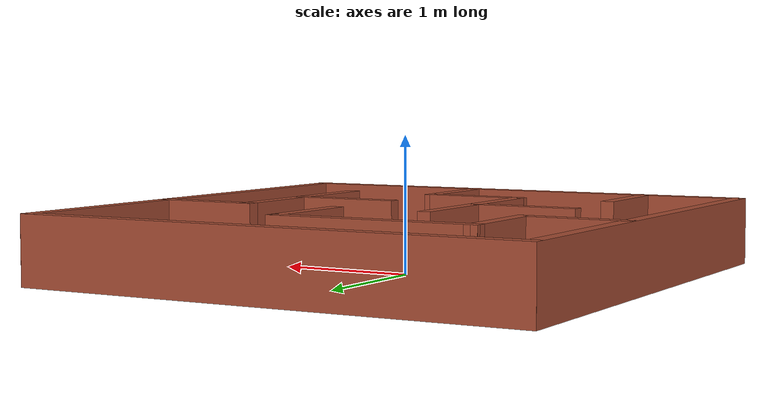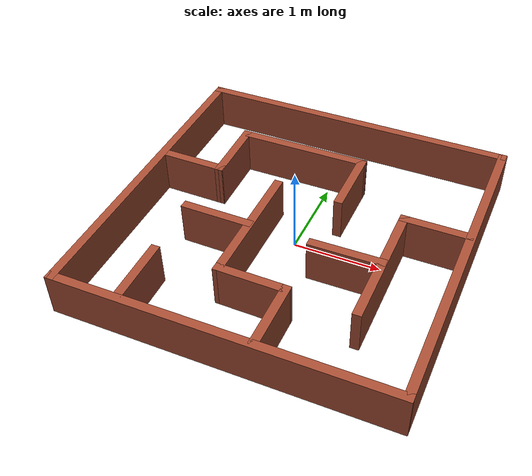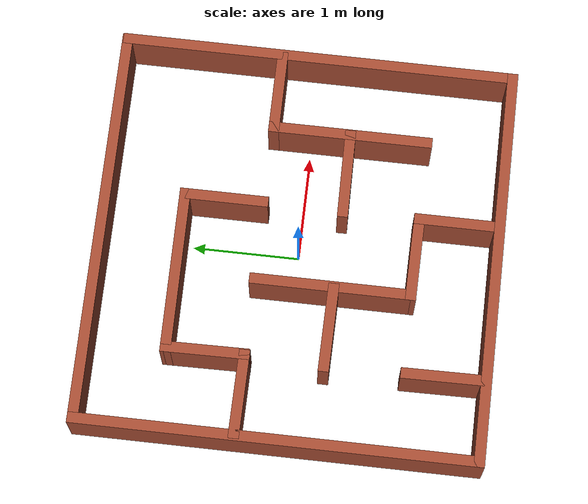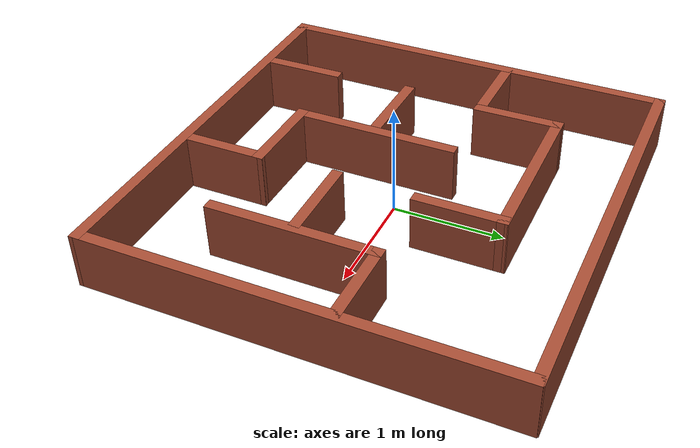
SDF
<?xml version='1.0'?>
<sdf version='1.7'>
  <model name='maze_world.world'>
    <pose>0.001753 0.003499 0 0 -0 0</pose>
    <link name='Wall_17'>
      <collision name='Wall_17_Collision'>
        <geometry>
          <box>
            <size>3.80467 0.1 0.5</size>
          </box>
        </geometry>
        <pose>0 0 0.25 0 -0 0</pose>
      </collision>
      <visual name='Wall_17_Visual'>
        <pose>0 0 0.25 0 -0 0</pose>
        <geometry>
          <box>
            <size>3.80467 0.1 0.5</size>
          </box>
        </geometry>
        <material>
          <script>
            <uri>file://media/materials/scripts/gazebo.material</uri>
            <name>Gazebo/Bricks</name>
          </script>
          <ambient>1 1 1 1</ambient>
        </material>
        <meta>
          <layer>0</layer>
        </meta>
      </visual>
      <pose>-0.00421 -1.83926 0 0 -0 0.000129</pose>
    </link>
    <link name='Wall_26'>
      <collision name='Wall_26_Collision'>
        <geometry>
          <box>
            <size>3.76918 0.1 0.5</size>
          </box>
        </geometry>
        <pose>0 0 0.25 0 -0 0</pose>
      </collision>
      <visual name='Wall_26_Visual'>
        <pose>0 0 0.25 0 -0 0</pose>
        <geometry>
          <box>
            <size>3.76918 0.1 0.5</size>
          </box>
        </geometry>
        <material>
          <script>
            <uri>file://media/materials/scripts/gazebo.material</uri>
            <name>Gazebo/Bricks</name>
          </script>
          <ambient>1 1 1 1</ambient>
        </material>
        <meta>
          <layer>0</layer>
        </meta>
      </visual>
      <pose>1.8524 -0.004086 0 0 -0 -1.57311</pose>
    </link>
    <link name='Wall_29'>
      <collision name='Wall_29_Collision'>
        <geometry>
          <box>
            <size>3.80431 0.1 0.5</size>
          </box>
        </geometry>
        <pose>0 0 0.25 0 -0 0</pose>
      </collision>
      <visual name='Wall_29_Visual'>
        <pose>0 0 0.25 0 -0 0</pose>
        <geometry>
          <box>
            <size>3.80431 0.1 0.5</size>
          </box>
        </geometry>
        <material>
          <script>
            <uri>file://media/materials/scripts/gazebo.material</uri>
            <name>Gazebo/Bricks</name>
          </script>
          <ambient>1 1 1 1</ambient>
        </material>
        <meta>
          <layer>0</layer>
        </meta>
      </visual>
      <pose>-0.004405 1.83935 0 0 -0 -8.2e-05</pose>
    </link>
    <link name='Wall_31'>
      <collision name='Wall_31_Collision'>
        <geometry>
          <box>
            <size>3.77862 0.1 0.5</size>
          </box>
        </geometry>
        <pose>0 0 0.25 0 -0 0</pose>
      </collision>
      <visual name='Wall_31_Visual'>
        <pose>0 0 0.25 0 -0 0</pose>
        <geometry>
          <box>
            <size>3.77862 0.1 0.5</size>
          </box>
        </geometry>
        <material>
          <script>
            <uri>file://media/materials/scripts/gazebo.material</uri>
            <name>Gazebo/Bricks</name>
          </script>
          <ambient>1 1 1 1</ambient>
        </material>
        <meta>
          <layer>0</layer>
        </meta>
      </visual>
      <pose>-1.85675 1e-06 0 0 -0 -1.5708</pose>
    </link>
    <link name='Wall_33'>
      <collision name='Wall_33_Collision'>
        <geometry>
          <box>
            <size>0.830044 0.1 0.5</size>
          </box>
        </geometry>
        <pose>0 0 0.25 0 -0 0</pose>
      </collision>
      <visual name='Wall_33_Visual'>
        <pose>0 0 0.25 0 -0 0</pose>
        <geometry>
          <box>
            <size>0.830044 0.1 0.5</size>
          </box>
        </geometry>
        <material>
          <script>
            <uri>file://media/materials/scripts/gazebo.material</uri>
            <name>Gazebo/Bricks</name>
          </script>
          <ambient>1 1 1 1</ambient>
        </material>
        <meta>
          <layer>0</layer>
        </meta>
      </visual>
      <pose>-1.47375 0.373805 0 0 -0 -0.010958</pose>
    </link>
    <link name='Wall_34'>
      <collision name='Wall_34_Collision'>
        <geometry>
          <box>
            <size>0.821748 0.1 0.5</size>
          </box>
        </geometry>
        <pose>0 0 0.25 0 -0 0</pose>
      </collision>
      <visual name='Wall_34_Visual'>
        <pose>0 0 0.25 0 -0 0</pose>
        <geometry>
          <box>
            <size>0.821748 0.1 0.5</size>
          </box>
        </geometry>
        <material>
          <script>
            <uri>file://media/materials/scripts/gazebo.material</uri>
            <name>Gazebo/Bricks</name>
          </script>
          <ambient>1 1 1 1</ambient>
        </material>
        <meta>
          <layer>0</layer>
        </meta>
      </visual>
      <pose>-1.10441 0.730653 0 0 -0 1.58285</pose>
    </link>
    <link name='Wall_35'>
      <collision name='Wall_35_Collision'>
        <geometry>
          <box>
            <size>1.57893 0.1 0.5</size>
          </box>
        </geometry>
        <pose>0 0 0.25 0 -0 0</pose>
      </collision>
      <visual name='Wall_35_Visual'>
        <pose>0 0 0.25 0 -0 0</pose>
        <geometry>
          <box>
            <size>1.57893 0.1 0.5</size>
          </box>
        </geometry>
        <material>
          <script>
            <uri>file://media/materials/scripts/gazebo.material</uri>
            <name>Gazebo/Bricks</name>
          </script>
          <ambient>1 1 1 1</ambient>
        </material>
        <meta>
          <layer>0</layer>
        </meta>
      </visual>
      <pose>-0.369405 1.0957 0 0 -0 0.005675</pose>
    </link>
    <link name='Wall_36'>
      <collision name='Wall_36_Collision'>
        <geometry>
          <box>
            <size>0.821622 0.1 0.5</size>
          </box>
        </geometry>
        <pose>0 0 0.25 0 -0 0</pose>
      </collision>
      <visual name='Wall_36_Visual'>
        <pose>0 0 0.25 0 -0 0</pose>
        <geometry>
          <box>
            <size>0.821622 0.1 0.5</size>
          </box>
        </geometry>
        <material>
          <script>
            <uri>file://media/materials/scripts/gazebo.material</uri>
            <name>Gazebo/Bricks</name>
          </script>
          <ambient>1 1 1 1</ambient>
        </material>
        <meta>
          <layer>0</layer>
        </meta>
      </visual>
      <pose>0.369852 0.730386 0 0 -0 -1.57105</pose>
    </link>
    <link name='Wall_38'>
      <collision name='Wall_38_Collision'>
        <geometry>
          <box>
            <size>0.813 0.1 0.5</size>
          </box>
        </geometry>
        <pose>0 0 0.25 0 -0 0</pose>
      </collision>
      <visual name='Wall_38_Visual'>
        <pose>0 0 0.25 0 -0 0</pose>
        <geometry>
          <box>
            <size>0.813 0.1 0.5</size>
          </box>
        </geometry>
        <material>
          <script>
            <uri>file://media/materials/scripts/gazebo.material</uri>
            <name>Gazebo/Bricks</name>
          </script>
          <ambient>1 1 1 1</ambient>
        </material>
        <meta>
          <layer>0</layer>
        </meta>
      </visual>
      <pose>1.47375 0.352501 0 0 -0 3.14159</pose>
    </link>
    <link name='Wall_39'>
      <collision name='Wall_39_Collision'>
        <geometry>
          <box>
            <size>1.5438 0.1 0.5</size>
          </box>
        </geometry>
        <pose>0 0 0.25 0 -0 0</pose>
      </collision>
      <visual name='Wall_39_Visual'>
        <pose>0 0 0.25 0 -0 0</pose>
        <geometry>
          <box>
            <size>1.5438 0.1 0.5</size>
          </box>
        </geometry>
        <material>
          <script>
            <uri>file://media/materials/scripts/gazebo.material</uri>
            <name>Gazebo/Bricks</name>
          </script>
          <ambient>1 1 1 1</ambient>
        </material>
        <meta>
          <layer>0</layer>
        </meta>
      </visual>
      <pose>1.11725 -0.369499 0 0 -0 -1.5708</pose>
    </link>
    <link name='Wall_43'>
      <collision name='Wall_43_Collision'>
        <geometry>
          <box>
            <size>1.543 0.1 0.5</size>
          </box>
        </geometry>
        <pose>0 0 0.25 0 -0 0</pose>
      </collision>
      <visual name='Wall_43_Visual'>
        <pose>0 0 0.25 0 -0 0</pose>
        <geometry>
          <box>
            <size>1.543 0.1 0.5</size>
          </box>
        </geometry>
        <material>
          <script>
            <uri>file://media/materials/scripts/gazebo.material</uri>
            <name>Gazebo/Bricks</name>
          </script>
          <ambient>1 1 1 1</ambient>
        </material>
        <meta>
          <layer>0</layer>
        </meta>
      </visual>
      <pose>-0.377753 -0.360999 0 0 -0 -1.5708</pose>
    </link>
    <link name='Wall_44'>
      <collision name='Wall_44_Collision'>
        <geometry>
          <box>
            <size>0.839055 0.1 0.5</size>
          </box>
        </geometry>
        <pose>0 0 0.25 0 -0 0</pose>
      </collision>
      <visual name='Wall_44_Visual'>
        <pose>0 0 0.25 0 -0 0</pose>
        <geometry>
          <box>
            <size>0.839055 0.1 0.5</size>
          </box>
        </geometry>
        <material>
          <script>
            <uri>file://media/materials/scripts/gazebo.material</uri>
            <name>Gazebo/Bricks</name>
          </script>
          <ambient>1 1 1 1</ambient>
        </material>
        <meta>
          <layer>0</layer>
        </meta>
      </visual>
      <pose>-0.008253 -1.087 0 0 -0 -0.012178</pose>
    </link>
    <link name='Wall_45'>
      <collision name='Wall_45_Collision'>
        <geometry>
          <box>
            <size>0.812839 0.1 0.5</size>
          </box>
        </geometry>
        <pose>0 0 0.25 0 -0 0</pose>
      </collision>
      <visual name='Wall_45_Visual'>
        <pose>0 0 0.25 0 -0 0</pose>
        <geometry>
          <box>
            <size>0.812839 0.1 0.5</size>
          </box>
        </geometry>
        <material>
          <script>
            <uri>file://media/materials/scripts/gazebo.material</uri>
            <name>Gazebo/Bricks</name>
          </script>
          <ambient>1 1 1 1</ambient>
        </material>
        <meta>
          <layer>0</layer>
        </meta>
      </visual>
      <pose>0.361247 -1.448 0 0 -0 -1.5708</pose>
    </link>
    <link name='Wall_47'>
      <collision name='Wall_47_Collision'>
        <geometry>
          <box>
            <size>0.839353 0.1 0.5</size>
          </box>
        </geometry>
        <pose>0 0 0.25 0 -0 0</pose>
      </collision>
      <visual name='Wall_47_Visual'>
        <pose>0 0 0.25 0 -0 0</pose>
        <geometry>
          <box>
            <size>0.839353 0.1 0.5</size>
          </box>
        </geometry>
        <material>
          <script>
            <uri>file://media/materials/scripts/gazebo.material</uri>
            <name>Gazebo/Bricks</name>
          </script>
          <ambient>1 1 1 1</ambient>
        </material>
        <meta>
          <layer>0</layer>
        </meta>
      </visual>
      <pose>-0.765253 -0.364999 0 0 -0 -0.012178</pose>
    </link>
    <link name='Wall_49'>
      <collision name='Wall_49_Collision'>
        <geometry>
          <box>
            <size>0.778498 0.1 0.5</size>
          </box>
        </geometry>
        <pose>0 0 0.25 0 -0 0</pose>
      </collision>
      <visual name='Wall_49_Visual'>
        <pose>0 0 0.25 0 -0 0</pose>
        <geometry>
          <box>
            <size>0.778498 0.1 0.5</size>
          </box>
        </geometry>
        <material>
          <script>
            <uri>file://media/materials/scripts/gazebo.material</uri>
            <name>Gazebo/Bricks</name>
          </script>
          <ambient>1 1 1 1</ambient>
        </material>
        <meta>
          <layer>0</layer>
        </meta>
      </visual>
      <pose>-1.11275 -1.4475 0 0 -0 -1.559</pose>
    </link>
    <link name='Wall_51'>
      <collision name='Wall_51_Collision'>
        <geometry>
          <box>
            <size>0.856699 0.1 0.5</size>
          </box>
        </geometry>
        <pose>0 0 0.25 0 -0 0</pose>
      </collision>
      <visual name='Wall_51_Visual'>
        <pose>0 0 0.25 0 -0 0</pose>
        <geometry>
          <box>
            <size>0.856699 0.1 0.5</size>
          </box>
        </geometry>
        <material>
          <script>
            <uri>file://media/materials/scripts/gazebo.material</uri>
            <name>Gazebo/Bricks</name>
          </script>
          <ambient>1 1 1 1</ambient>
        </material>
        <meta>
          <layer>0</layer>
        </meta>
      </visual>
      <pose>0.730747 -0.373999 0 0 -0 0.011888</pose>
    </link>
    <static>1</static>
  </model>
</sdf>
